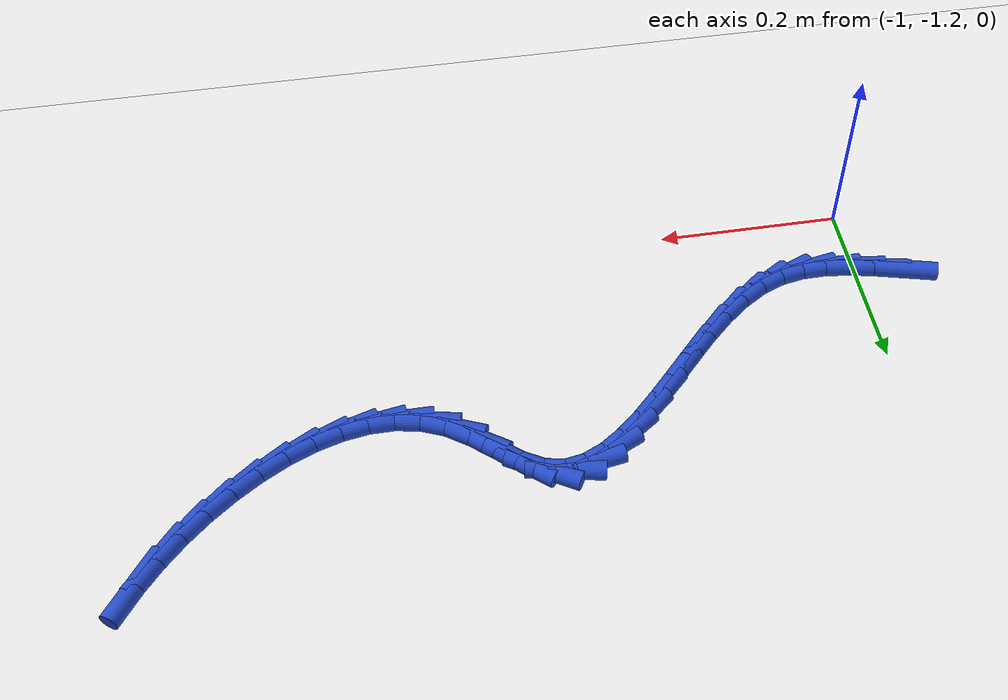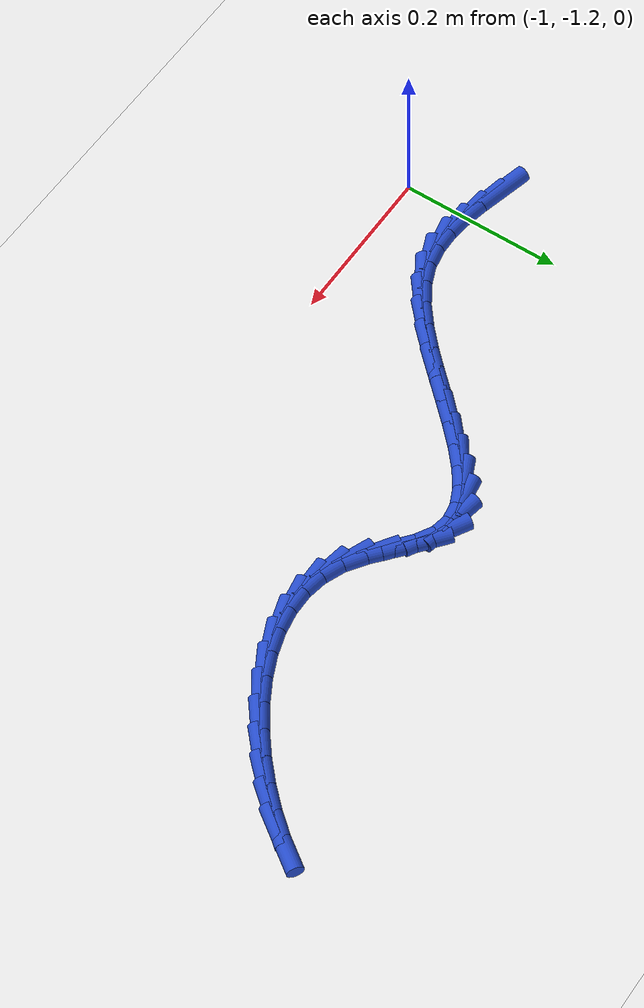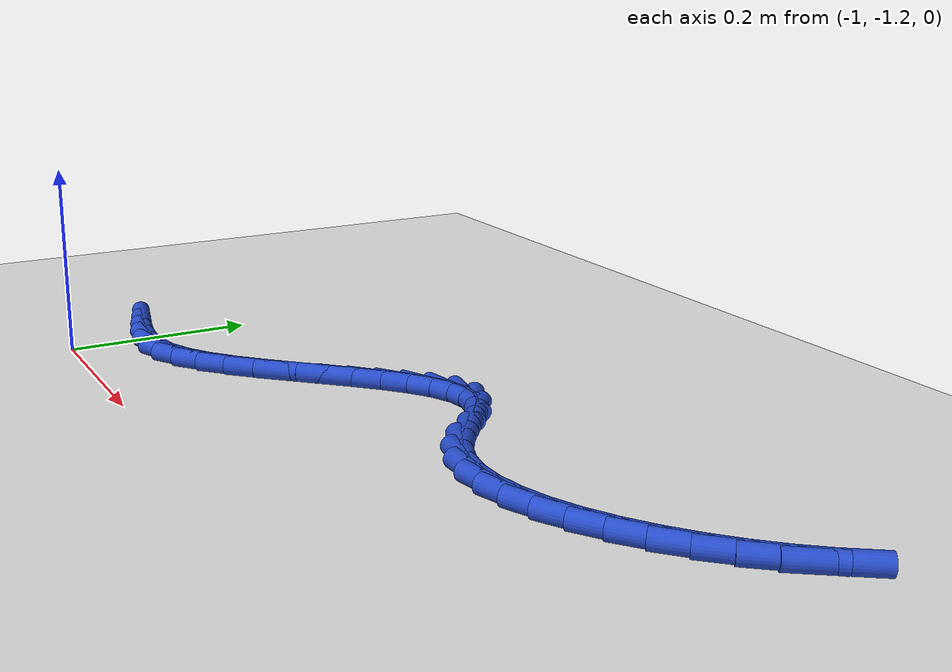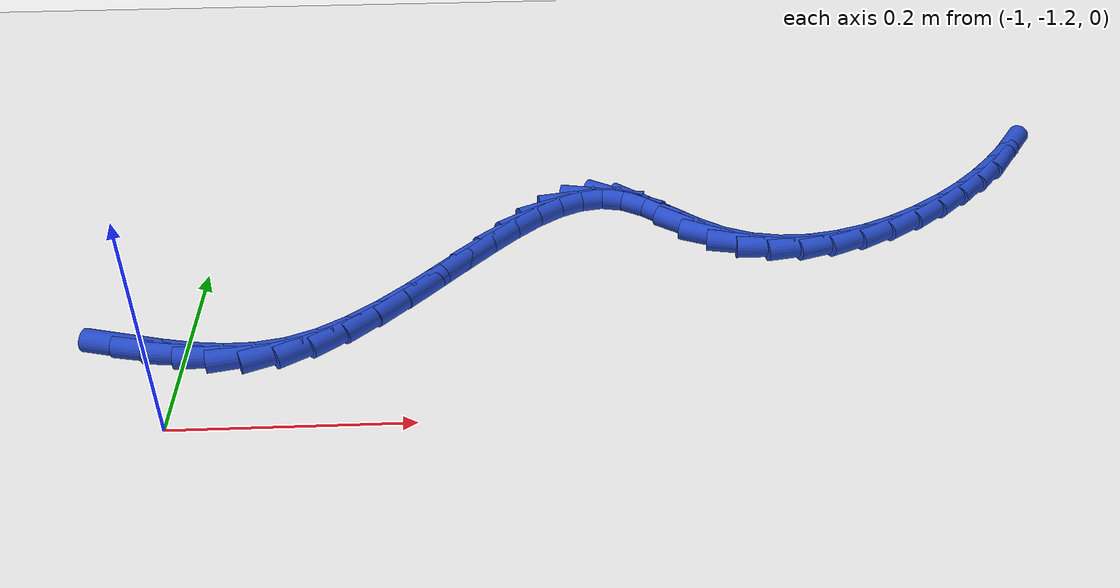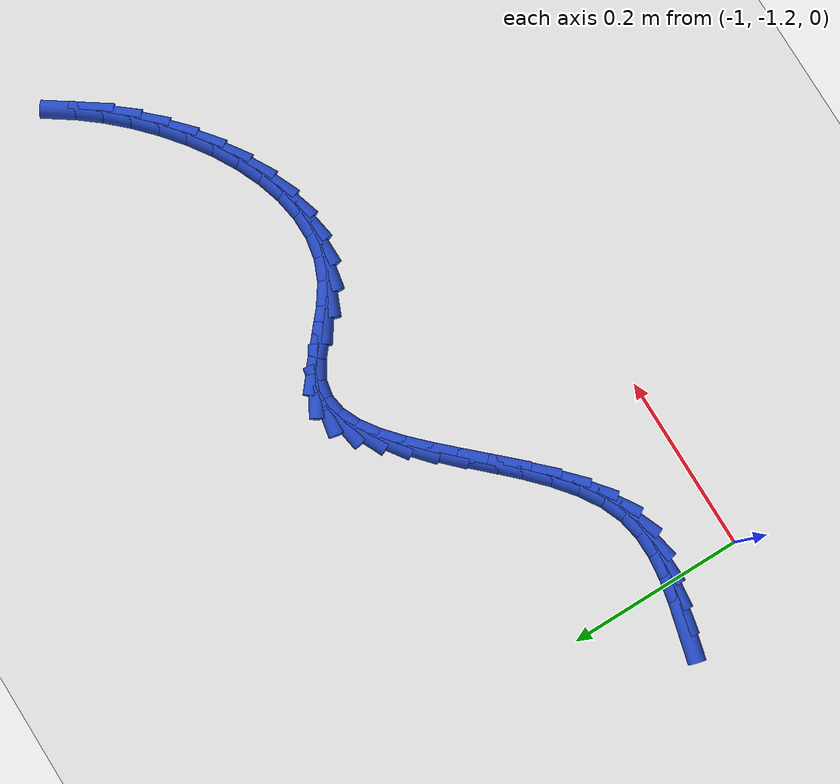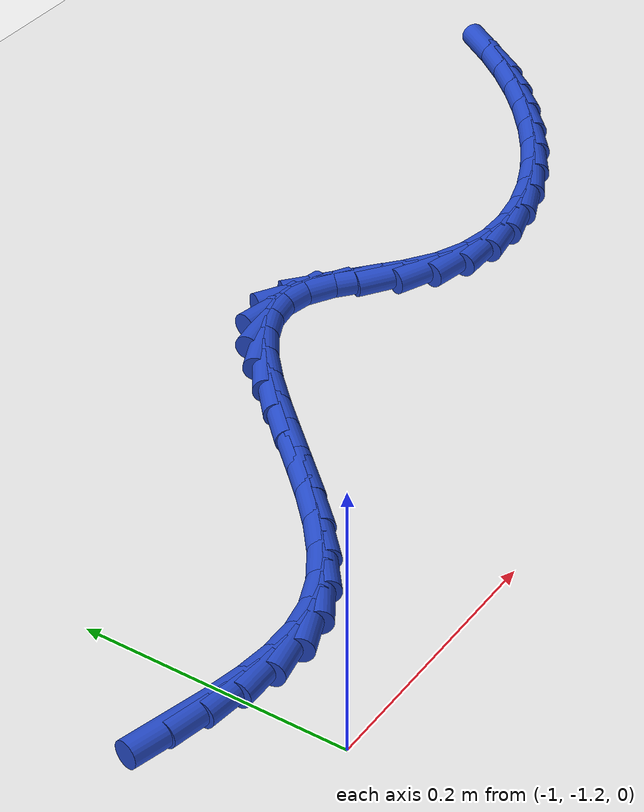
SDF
<sdf version="1.6">
 <world name="default">
  <model name="ground_plane">
   <static>1</static>
   <link name="link">
    <collision name="collision">
     <geometry><plane><normal>0 0 1</normal><size>100 100</size></plane></geometry>
     <surface><friction><ode><mu>100</mu><mu2>50</mu2></ode></friction></surface>
    </collision>
    <visual name="visual">
     <cast_shadows>0</cast_shadows>
     <geometry><plane><normal>0 0 1</normal><size>100 100</size></plane></geometry>
     <material>
      <script><uri>file://media/materials/scripts/gazebo.material</uri><name>Gazebo/WhiteGlow</name></script>
     </material>
    </visual>
   </link>
  </model>
  <model name="line">
   <link name="link_214">
    <pose>-1.0465348967848087 -1.1064021573189173 0.01 0 1.57 -0.2516833865346975</pose>
    <collision name="collision">
     <geometry><cylinder><radius>0.01</radius><length>0.08</length></cylinder></geometry>
    </collision>
    <visual name="visual">
     <material>
      <script><name>Gazebo/Blue</name><uri>file://media/materials/scripts/gazebo.material</uri></script>
     </material>
     <geometry><cylinder><radius>0.01</radius><length>0.08</length></cylinder></geometry>
    </visual>
   </link>
   <link name="link_215">
    <pose>-1.0191465916196352 -1.1134446720778857 0.01 0 1.57 -0.20192048465355666</pose>
    <collision name="collision">
     <geometry><cylinder><radius>0.01</radius><length>0.08</length></cylinder></geometry>
    </collision>
    <visual name="visual">
     <material>
      <script><name>Gazebo/Blue</name><uri>file://media/materials/scripts/gazebo.material</uri></script>
     </material>
     <geometry><cylinder><radius>0.01</radius><length>0.08</length></cylinder></geometry>
    </visual>
   </link>
   <link name="link_216">
    <pose>-0.9921081267164235 -1.118979722085246 0.01 0 1.57 -0.11280594382060542</pose>
    <collision name="collision">
     <geometry><cylinder><radius>0.01</radius><length>0.08</length></cylinder></geometry>
    </collision>
    <visual name="visual">
     <material>
      <script><name>Gazebo/Blue</name><uri>file://media/materials/scripts/gazebo.material</uri></script>
     </material>
     <geometry><cylinder><radius>0.01</radius><length>0.08</length></cylinder></geometry>
    </visual>
   </link>
   <link name="link_217">
    <pose>-0.96547549153955 -1.1219968503372917 0.01 0 1.57 0.019532653753814303</pose>
    <collision name="collision">
     <geometry><cylinder><radius>0.01</radius><length>0.08</length></cylinder></geometry>
    </collision>
    <visual name="visual">
     <material>
      <script><name>Gazebo/Blue</name><uri>file://media/materials/scripts/gazebo.material</uri></script>
     </material>
     <geometry><cylinder><radius>0.01</radius><length>0.08</length></cylinder></geometry>
    </visual>
   </link>
   <link name="link_218">
    <pose>-0.9393046755533938 -1.1214855998303168 0.01 0 1.57 0.19437583673027312</pose>
    <collision name="collision">
     <geometry><cylinder><radius>0.01</radius><length>0.08</length></cylinder></geometry>
    </collision>
    <visual name="visual">
     <material>
      <script><name>Gazebo/Blue</name><uri>file://media/materials/scripts/gazebo.material</uri></script>
     </material>
     <geometry><cylinder><radius>0.01</radius><length>0.08</length></cylinder></geometry>
    </visual>
   </link>
   <link name="link_219">
    <pose>-0.9136516682223315 -1.1164355135606145 0.01 0 1.57 0.3960917700707694</pose>
    <collision name="collision">
     <geometry><cylinder><radius>0.01</radius><length>0.08</length></cylinder></geometry>
    </collision>
    <visual name="visual">
     <material>
      <script><name>Gazebo/Blue</name><uri>file://media/materials/scripts/gazebo.material</uri></script>
     </material>
     <geometry><cylinder><radius>0.01</radius><length>0.08</length></cylinder></geometry>
    </visual>
   </link>
   <link name="link_220">
    <pose>-0.8885676088844683 -1.105945511630108 0.01 0 1.57 0.5662063101610457</pose>
    <collision name="collision">
     <geometry><cylinder><radius>0.01</radius><length>0.08</length></cylinder></geometry>
    </collision>
    <visual name="visual">
     <material>
      <script><name>Gazebo/Blue</name><uri>file://media/materials/scripts/gazebo.material</uri></script>
     </material>
     <geometry><cylinder><radius>0.01</radius><length>0.08</length></cylinder></geometry>
    </visual>
   </link>
   <link name="link_221">
    <pose>-0.8640483912291692 -1.0903603804995101 0.01 0 1.57 0.6835431144165603</pose>
    <collision name="collision">
     <geometry><cylinder><radius>0.01</radius><length>0.08</length></cylinder></geometry>
    </collision>
    <visual name="visual">
     <material>
      <script><name>Gazebo/Blue</name><uri>file://media/materials/scripts/gazebo.material</uri></script>
     </material>
     <geometry><cylinder><radius>0.01</radius><length>0.08</length></cylinder></geometry>
    </visual>
   </link>
   <link name="link_222">
    <pose>-0.8400547991910418 -1.0708166805215007 0.01 0 1.57 0.7602250502485973</pose>
    <collision name="collision">
     <geometry><cylinder><radius>0.01</radius><length>0.08</length></cylinder></geometry>
    </collision>
    <visual name="visual">
     <material>
      <script><name>Gazebo/Blue</name><uri>file://media/materials/scripts/gazebo.material</uri></script>
     </material>
     <geometry><cylinder><radius>0.01</radius><length>0.08</length></cylinder></geometry>
    </visual>
   </link>
   <link name="link_223">
    <pose>-0.8165470550118028 -1.0484636390061124 0.01 0 1.57 0.8056075222001847</pose>
    <collision name="collision">
     <geometry><cylinder><radius>0.01</radius><length>0.08</length></cylinder></geometry>
    </collision>
    <visual name="visual">
     <material>
      <script><name>Gazebo/Blue</name><uri>file://media/materials/scripts/gazebo.material</uri></script>
     </material>
     <geometry><cylinder><radius>0.01</radius><length>0.08</length></cylinder></geometry>
    </visual>
   </link>
   <link name="link_224">
    <pose>-0.7934853809331696 -1.0244504832633767 0.01 0 1.57 0.8249850110102617</pose>
    <collision name="collision">
     <geometry><cylinder><radius>0.01</radius><length>0.08</length></cylinder></geometry>
    </collision>
    <visual name="visual">
     <material>
      <script><name>Gazebo/Blue</name><uri>file://media/materials/scripts/gazebo.material</uri></script>
     </material>
     <geometry><cylinder><radius>0.01</radius><length>0.08</length></cylinder></geometry>
    </visual>
   </link>
   <link name="link_225">
    <pose>-0.7708299991968588 -0.9999264406033265 0.01 0 1.57 0.8199669533424897</pose>
    <collision name="collision">
     <geometry><cylinder><radius>0.01</radius><length>0.08</length></cylinder></geometry>
    </collision>
    <visual name="visual">
     <material>
      <script><name>Gazebo/Blue</name><uri>file://media/materials/scripts/gazebo.material</uri></script>
     </material>
     <geometry><cylinder><radius>0.01</radius><length>0.08</length></cylinder></geometry>
    </visual>
   </link>
   <link name="link_226">
    <pose>-0.7485411320445866 -0.9760407383359923 0.01 0 1.57 0.7884849311790305</pose>
    <collision name="collision">
     <geometry><cylinder><radius>0.01</radius><length>0.08</length></cylinder></geometry>
    </collision>
    <visual name="visual">
     <material>
      <script><name>Gazebo/Blue</name><uri>file://media/materials/scripts/gazebo.material</uri></script>
     </material>
     <geometry><cylinder><radius>0.01</radius><length>0.08</length></cylinder></geometry>
    </visual>
   </link>
   <link name="link_227">
    <pose>-0.7265790017180717 -0.9539426037714076 0.01 0 1.57 0.7239173091663076</pose>
    <collision name="collision">
     <geometry><cylinder><radius>0.01</radius><length>0.08</length></cylinder></geometry>
    </collision>
    <visual name="visual">
     <material>
      <script><name>Gazebo/Blue</name><uri>file://media/materials/scripts/gazebo.material</uri></script>
     </material>
     <geometry><cylinder><radius>0.01</radius><length>0.08</length></cylinder></geometry>
    </visual>
   </link>
   <link name="link_228">
    <pose>-0.7049038304590298 -0.9347812642196041 0.01 0 1.57 0.613093770414119</pose>
    <collision name="collision">
     <geometry><cylinder><radius>0.01</radius><length>0.08</length></cylinder></geometry>
    </collision>
    <visual name="visual">
     <material>
      <script><name>Gazebo/Blue</name><uri>file://media/materials/scripts/gazebo.material</uri></script>
     </material>
     <geometry><cylinder><radius>0.01</radius><length>0.08</length></cylinder></geometry>
    </visual>
   </link>
   <link name="link_229">
    <pose>-0.6834758405091779 -0.9197059469906129 0.01 0 1.57 0.43419142860790844</pose>
    <collision name="collision">
     <geometry><cylinder><radius>0.01</radius><length>0.08</length></cylinder></geometry>
    </collision>
    <visual name="visual">
     <material>
      <script><name>Gazebo/Blue</name><uri>file://media/materials/scripts/gazebo.material</uri></script>
     </material>
     <geometry><cylinder><radius>0.01</radius><length>0.08</length></cylinder></geometry>
    </visual>
   </link>
   <link name="link_230">
    <pose>-0.6622552541102331 -0.9098658793944671 0.01 0 1.57 0.16268733977391828</pose>
    <collision name="collision">
     <geometry><cylinder><radius>0.01</radius><length>0.08</length></cylinder></geometry>
    </collision>
    <visual name="visual">
     <material>
      <script><name>Gazebo/Blue</name><uri>file://media/materials/scripts/gazebo.material</uri></script>
     </material>
     <geometry><cylinder><radius>0.01</radius><length>0.08</length></cylinder></geometry>
    </visual>
   </link>
   <link name="link_231">
    <pose>-0.6412022935039123 -0.906410288741198 0.01 0 1.57 -0.19247815243004449</pose>
    <collision name="collision">
     <geometry><cylinder><radius>0.01</radius><length>0.08</length></cylinder></geometry>
    </collision>
    <visual name="visual">
     <material>
      <script><name>Gazebo/Blue</name><uri>file://media/materials/scripts/gazebo.material</uri></script>
     </material>
     <geometry><cylinder><radius>0.01</radius><length>0.08</length></cylinder></geometry>
    </visual>
   </link>
   <link name="link_232">
    <pose>-0.6202771809319323 -0.9104884023408377 0.01 0 1.57 -0.5300655891114187</pose>
    <collision name="collision">
     <geometry><cylinder><radius>0.01</radius><length>0.08</length></cylinder></geometry>
    </collision>
    <visual name="visual">
     <material>
      <script><name>Gazebo/Blue</name><uri>file://media/materials/scripts/gazebo.material</uri></script>
     </material>
     <geometry><cylinder><radius>0.01</radius><length>0.08</length></cylinder></geometry>
    </visual>
   </link>
   <link name="link_233">
    <pose>-0.5993952877322005 -0.9227252987078363 0.01 0 1.57 -0.6934470721279234</pose>
    <collision name="collision">
     <geometry><cylinder><radius>0.01</radius><length>0.08</length></cylinder></geometry>
    </collision>
    <visual name="visual">
     <material>
      <script><name>Gazebo/Blue</name><uri>file://media/materials/scripts/gazebo.material</uri></script>
     </material>
     <geometry><cylinder><radius>0.01</radius><length>0.08</length></cylinder></geometry>
    </visual>
   </link>
   <link name="link_234">
    <pose>-0.5781819619881812 -0.9403567079467845 0.01 0 1.57 -0.7093162514736001</pose>
    <collision name="collision">
     <geometry><cylinder><radius>0.01</radius><length>0.08</length></cylinder></geometry>
    </collision>
    <visual name="visual">
     <material>
      <script><name>Gazebo/Blue</name><uri>file://media/materials/scripts/gazebo.material</uri></script>
     </material>
     <geometry><cylinder><radius>0.01</radius><length>0.08</length></cylinder></geometry>
    </visual>
   </link>
   <link name="link_235">
    <pose>-0.5561471785574876 -0.9592700542813115 0.01 0 1.57 -0.603343566675891</pose>
    <collision name="collision">
     <geometry><cylinder><radius>0.01</radius><length>0.08</length></cylinder></geometry>
    </collision>
    <visual name="visual">
     <material>
      <script><name>Gazebo/Blue</name><uri>file://media/materials/scripts/gazebo.material</uri></script>
     </material>
     <geometry><cylinder><radius>0.01</radius><length>0.08</length></cylinder></geometry>
    </visual>
   </link>
   <link name="link_236">
    <pose>-0.5328019053958457 -0.9753562683809589 0.01 0 1.57 -0.398197510071554</pose>
    <collision name="collision">
     <geometry><cylinder><radius>0.01</radius><length>0.08</length></cylinder></geometry>
    </collision>
    <visual name="visual">
     <material>
      <script><name>Gazebo/Blue</name><uri>file://media/materials/scripts/gazebo.material</uri></script>
     </material>
     <geometry><cylinder><radius>0.01</radius><length>0.08</length></cylinder></geometry>
    </visual>
   </link>
   <link name="link_237">
    <pose>-0.5079023854743534 -0.9858307529618279 0.01 0 1.57 -0.18744910252114144</pose>
    <collision name="collision">
     <geometry><cylinder><radius>0.01</radius><length>0.08</length></cylinder></geometry>
    </collision>
    <visual name="visual">
     <material>
      <script><name>Gazebo/Blue</name><uri>file://media/materials/scripts/gazebo.material</uri></script>
     </material>
     <geometry><cylinder><radius>0.01</radius><length>0.08</length></cylinder></geometry>
    </visual>
   </link>
   <link name="link_238">
    <pose>-0.48173901562591437 -0.9907933132033151 0.01 0 1.57 0.0025863274085620035</pose>
    <collision name="collision">
     <geometry><cylinder><radius>0.01</radius><length>0.08</length></cylinder></geometry>
    </collision>
    <visual name="visual">
     <material>
      <script><name>Gazebo/Blue</name><uri>file://media/materials/scripts/gazebo.material</uri></script>
     </material>
     <geometry><cylinder><radius>0.01</radius><length>0.08</length></cylinder></geometry>
    </visual>
   </link>
   <link name="link_239">
    <pose>-0.45467248149439654 -0.9907233101281503 0.01 0 1.57 0.1659134266335543</pose>
    <collision name="collision">
     <geometry><cylinder><radius>0.01</radius><length>0.08</length></cylinder></geometry>
    </collision>
    <visual name="visual">
     <material>
      <script><name>Gazebo/Blue</name><uri>file://media/materials/scripts/gazebo.material</uri></script>
     </material>
     <geometry><cylinder><radius>0.01</radius><length>0.08</length></cylinder></geometry>
    </visual>
   </link>
   <link name="link_240">
    <pose>-0.427063468723668 -0.9861001047590636 0.01 0 1.57 0.30329196094315874</pose>
    <collision name="collision">
     <geometry><cylinder><radius>0.01</radius><length>0.08</length></cylinder></geometry>
    </collision>
    <visual name="visual">
     <material>
      <script><name>Gazebo/Blue</name><uri>file://media/materials/scripts/gazebo.material</uri></script>
     </material>
     <geometry><cylinder><radius>0.01</radius><length>0.08</length></cylinder></geometry>
    </visual>
   </link>
   <link name="link_241">
    <pose>-0.3992726629575966 -0.977403058118785 0.01 0 1.57 0.4188158824420068</pose>
    <collision name="collision">
     <geometry><cylinder><radius>0.01</radius><length>0.08</length></cylinder></geometry>
    </collision>
    <visual name="visual">
     <material>
      <script><name>Gazebo/Blue</name><uri>file://media/materials/scripts/gazebo.material</uri></script>
     </material>
     <geometry><cylinder><radius>0.01</radius><length>0.08</length></cylinder></geometry>
    </visual>
   </link>
   <link name="link_242">
    <pose>-0.37166074984005076 -0.9651115312300448 0.01 0 1.57 0.5173828407343788</pose>
    <collision name="collision">
     <geometry><cylinder><radius>0.01</radius><length>0.08</length></cylinder></geometry>
    </collision>
    <visual name="visual">
     <material>
      <script><name>Gazebo/Blue</name><uri>file://media/materials/scripts/gazebo.material</uri></script>
     </material>
     <geometry><cylinder><radius>0.01</radius><length>0.08</length></cylinder></geometry>
    </visual>
   </link>
   <link name="link_243">
    <pose>-0.3445884150148974 -0.9497048851155725 0.01 0 1.57 0.6035602948564186</pose>
    <collision name="collision">
     <geometry><cylinder><radius>0.01</radius><length>0.08</length></cylinder></geometry>
    </collision>
    <visual name="visual">
     <material>
      <script><name>Gazebo/Blue</name><uri>file://media/materials/scripts/gazebo.material</uri></script>
     </material>
     <geometry><cylinder><radius>0.01</radius><length>0.08</length></cylinder></geometry>
    </visual>
   </link>
   <link name="link_244">
    <pose>-0.3184163441260062 -0.9316624807980988 0.01 0 1.57 0.6813126368256589</pose>
    <collision name="collision">
     <geometry><cylinder><radius>0.01</radius><length>0.08</length></cylinder></geometry>
    </collision>
    <visual name="visual">
     <material>
      <script><name>Gazebo/Blue</name><uri>file://media/materials/scripts/gazebo.material</uri></script>
     </material>
     <geometry><cylinder><radius>0.01</radius><length>0.08</length></cylinder></geometry>
    </visual>
   </link>
   <link name="link_245">
    <pose>-0.29350522281724445 -0.9114636793003538 0.01 0 1.57 0.7541089584282994</pose>
    <collision name="collision">
     <geometry><cylinder><radius>0.01</radius><length>0.08</length></cylinder></geometry>
    </collision>
    <visual name="visual">
     <material>
      <script><name>Gazebo/Blue</name><uri>file://media/materials/scripts/gazebo.material</uri></script>
     </material>
     <geometry><cylinder><radius>0.01</radius><length>0.08</length></cylinder></geometry>
    </visual>
   </link>
   <link name="link_246">
    <pose>-0.27021573673248006 -0.8895878416450673 0.01 0 1.57 0.8251770916702967</pose>
    <collision name="collision">
     <geometry><cylinder><radius>0.01</radius><length>0.08</length></cylinder></geometry>
    </collision>
    <visual name="visual">
     <material>
      <script><name>Gazebo/Blue</name><uri>file://media/materials/scripts/gazebo.material</uri></script>
     </material>
     <geometry><cylinder><radius>0.01</radius><length>0.08</length></cylinder></geometry>
    </visual>
   </link>
   <link name="link_247">
    <pose>-0.24890857151558127 -0.8665143288549697 0.01 0 1.57 0.8976038497817511</pose>
    <collision name="collision">
     <geometry><cylinder><radius>0.01</radius><length>0.08</length></cylinder></geometry>
    </collision>
    <visual name="visual">
     <material>
      <script><name>Gazebo/Blue</name><uri>file://media/materials/scripts/gazebo.material</uri></script>
     </material>
     <geometry><cylinder><radius>0.01</radius><length>0.08</length></cylinder></geometry>
    </visual>
   </link>
   <link name="link_248">
    <pose>-0.22992233408508445 -0.8427060496132249 0.01 0 1.57 0.9705853686919348</pose>
    <collision name="collision">
     <geometry><cylinder><radius>0.01</radius><length>0.08</length></cylinder></geometry>
    </collision>
    <visual name="visual">
     <material>
      <script><name>Gazebo/Blue</name><uri>file://media/materials/scripts/gazebo.material</uri></script>
     </material>
     <geometry><cylinder><radius>0.01</radius><length>0.08</length></cylinder></geometry>
    </visual>
   </link>
  </model>
 </world>
</sdf>
